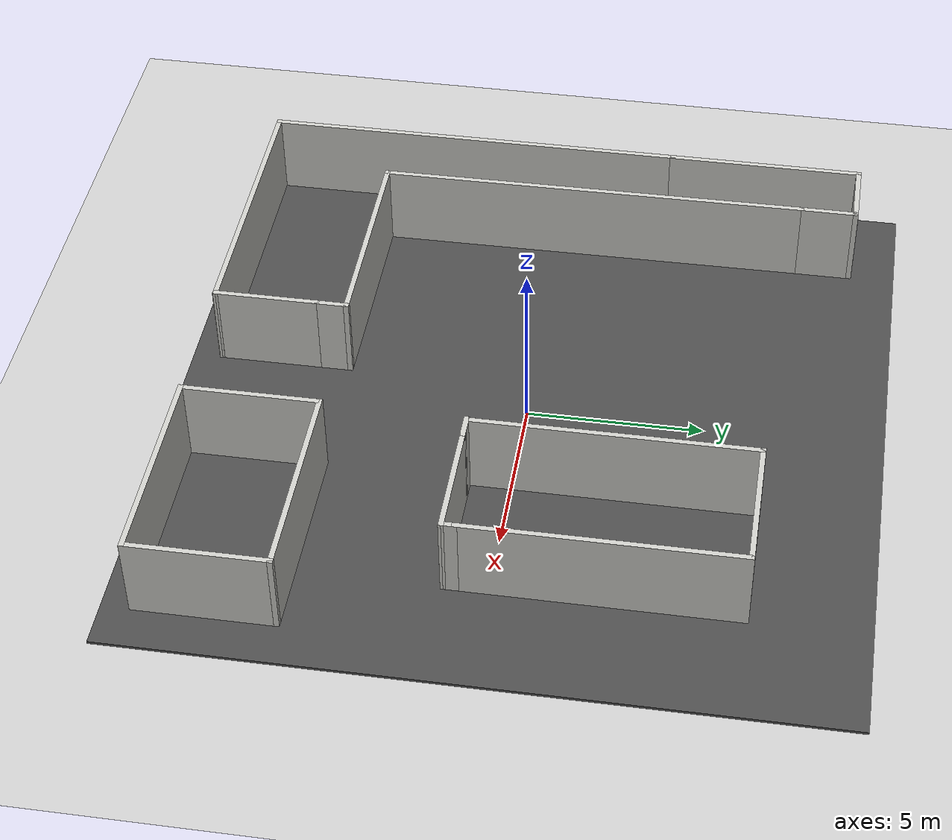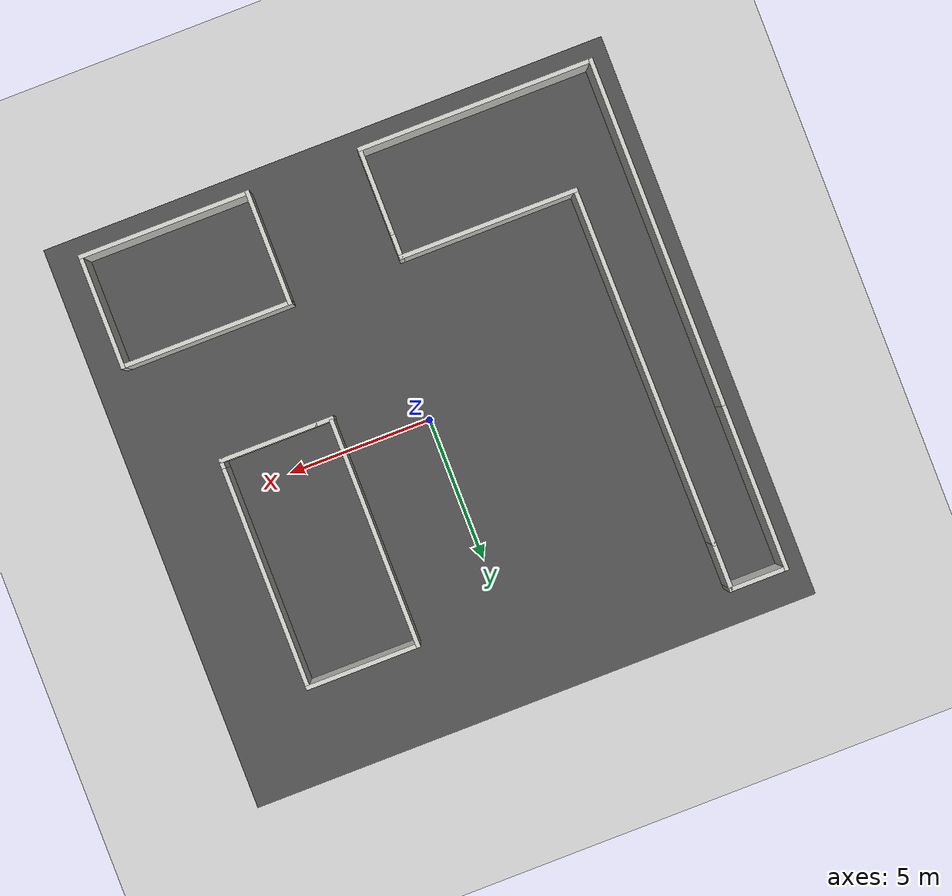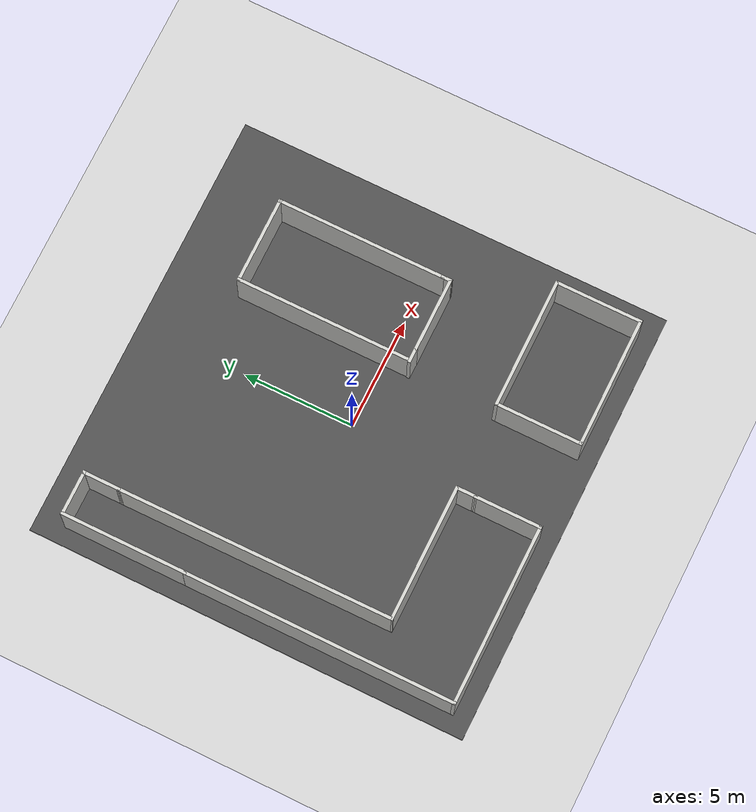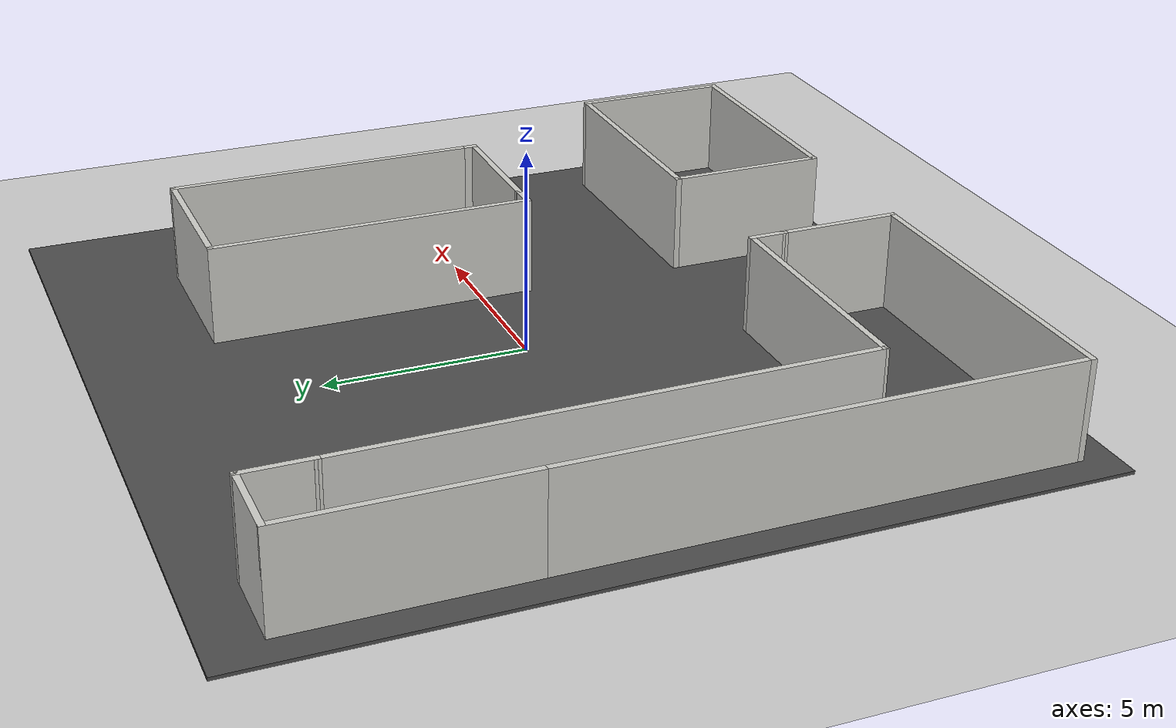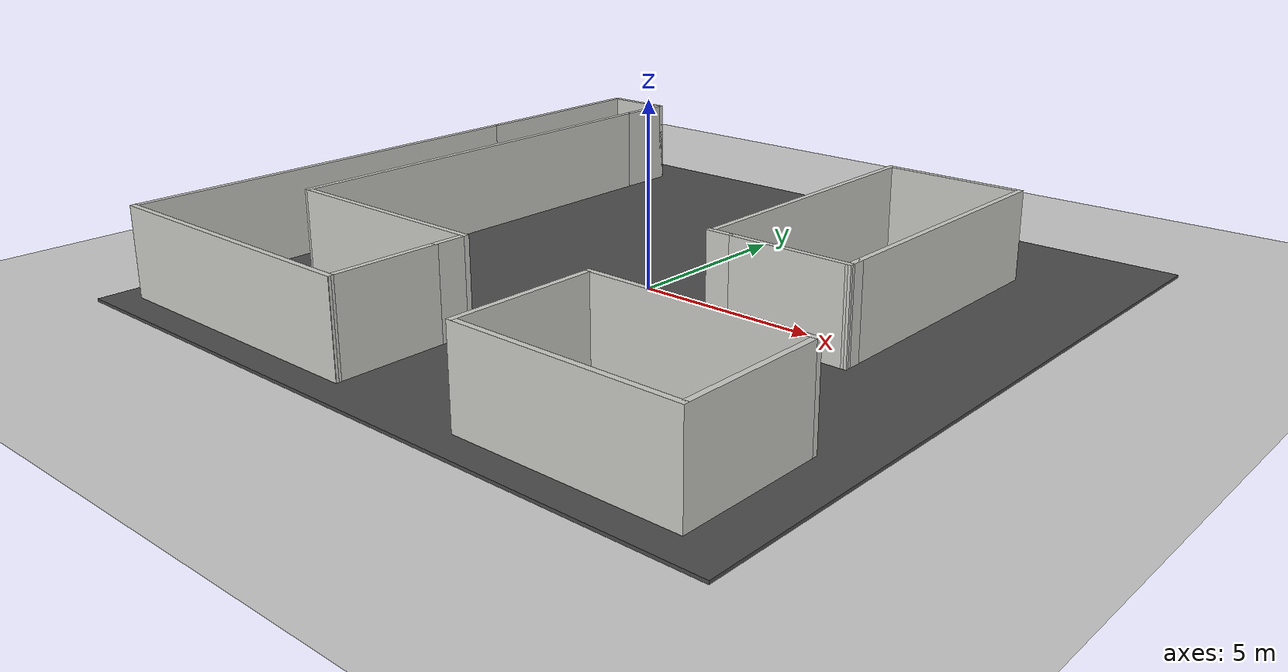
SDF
<sdf version="1.7">
 <world name="default">
  <light name="sun" type="directional">
   <pose>0 0 10 0 -0 0</pose>
   <diffuse>0.8 0.8 0.8 1</diffuse>
   <specular>0.2 0.2 0.2 1</specular>
   <attenuation>
    <range>1000</range>
    <constant>0.9</constant>
    <linear>0.01</linear>
    <quadratic>0.001</quadratic>
   </attenuation>
   <direction>-0.5 0.1 -0.9</direction>
   <spot><inner_angle>0</inner_angle><outer_angle>0</outer_angle><falloff>0</falloff></spot>
  </light>
  <model name="ground_plane">
   <static>1</static>
   <link name="link">
    <collision name="collision">
     <geometry><plane><normal>0 0 1</normal><size>100 100</size></plane></geometry>
     <surface>
      <contact><collide_bitmask>65535</collide_bitmask></contact>
      <friction><ode><mu>100</mu><mu2>50</mu2></ode></friction>
     </surface>
    </collision>
    <visual name="visual">
     <cast_shadows>0</cast_shadows>
     <geometry><plane><normal>0 0 1</normal><size>100 100</size></plane></geometry>
     <material>
      <script><uri>file://media/materials/scripts/gazebo.material</uri><name>Gazebo/Grey</name></script>
     </material>
    </visual>
   </link>
  </model>
  <gravity>0 0 -9.8</gravity>
  <magnetic_field>6e-06 2.3e-05 -4.2e-05</magnetic_field>
  <atmosphere type="adiabatic"/>
  <physics type="ode">
   <max_step_size>0.001</max_step_size>
   <real_time_factor>1</real_time_factor>
   <real_time_update_rate>1000</real_time_update_rate>
  </physics>
  <scene><ambient>0.4 0.4 0.4 1</ambient><background>0.7 0.7 0.7 1</background><shadows>1</shadows></scene>
  <spherical_coordinates>
   <surface_model>EARTH_WGS84</surface_model>
   <latitude_deg>0</latitude_deg>
   <longitude_deg>0</longitude_deg>
   <elevation>0</elevation>
   <heading_deg>0</heading_deg>
  </spherical_coordinates>
  <model name="Map_simu_leo">
   <pose>-0.195063 -0.182903 0 0 -0 0</pose>
   <link name="Wall_10">
    <collision name="Wall_10_Collision">
     <geometry><box><size>1 0.15 2.5</size></box></geometry>
     <pose>0 0 1.25 0 -0 0</pose>
    </collision>
    <visual name="Wall_10_Visual">
     <pose>0 0 1.25 0 -0 0</pose>
     <geometry><box><size>1 0.15 2.5</size></box></geometry>
     <material>
      <script><uri>file://media/materials/scripts/gazebo.material</uri><name>Gazebo/CeilingTiled</name></script>
      <ambient>1 1 1 1</ambient>
     </material>
     <meta><layer>0</layer></meta>
    </visual>
    <pose>-0.844024 -5.54588 0 0 -0 1.5708</pose>
   </link>
   <link name="Wall_12">
    <collision name="Wall_12_Collision">
     <geometry><box><size>6.25 0.15 2.5</size></box></geometry>
     <pose>0 0 1.25 0 -0 0</pose>
    </collision>
    <visual name="Wall_12_Visual">
     <pose>0 0 1.25 0 -0 0</pose>
     <geometry><box><size>6.25 0.15 2.5</size></box></geometry>
     <material>
      <script><uri>file://media/materials/scripts/gazebo.material</uri><name>Gazebo/CeilingTiled</name></script>
      <ambient>1 1 1 1</ambient>
     </material>
     <meta><layer>0</layer></meta>
    </visual>
    <pose>-3.89402 -5.12088 0 0 -0 3.14159</pose>
   </link>
   <link name="Wall_14">
    <collision name="Wall_14_Collision">
     <geometry><box><size>12.5715 0.15 2.5</size></box></geometry>
     <pose>0 0 1.25 0 -0 0</pose>
    </collision>
    <visual name="Wall_14_Visual">
     <pose>0 0 1.25 0 -0 0</pose>
     <geometry><box><size>12.5715 0.15 2.5</size></box></geometry>
     <material>
      <script><uri>file://media/materials/scripts/gazebo.material</uri><name>Gazebo/CeilingTiled</name></script>
      <ambient>1 1 1 1</ambient>
     </material>
     <meta><layer>0</layer></meta>
    </visual>
    <pose>-6.98199 1.08976 0 0 -0 1.57691</pose>
   </link>
   <link name="Wall_19">
    <collision name="Wall_19_Collision">
     <geometry><box><size>2 0.15 2.5</size></box></geometry>
     <pose>0 0 1.25 0 -0 0</pose>
    </collision>
    <visual name="Wall_19_Visual">
     <pose>0 0 1.25 0 -0 0</pose>
     <geometry><box><size>2 0.15 2.5</size></box></geometry>
     <material>
      <script><uri>file://media/materials/scripts/gazebo.material</uri><name>Gazebo/CeilingTiled</name></script>
      <ambient>1 1 1 1</ambient>
     </material>
     <meta><layer>0</layer></meta>
    </visual>
    <pose>-8.01902 8.89912 0 0 -0 0</pose>
   </link>
   <link name="Wall_21">
    <collision name="Wall_21_Collision">
     <geometry><box><size>1.75 0.15 2.5</size></box></geometry>
     <pose>0 0 1.25 0 -0 0</pose>
    </collision>
    <visual name="Wall_21_Visual">
     <pose>0 0 1.25 0 -0 0</pose>
     <geometry><box><size>1.75 0.15 2.5</size></box></geometry>
     <material>
      <script><uri>file://media/materials/scripts/gazebo.material</uri><name>Gazebo/CeilingTiled</name></script>
      <ambient>1 1 1 1</ambient>
     </material>
     <meta><layer>0</layer></meta>
    </visual>
    <pose>-7.01996 8.10367 0 0 -0 1.5708</pose>
   </link>
   <link name="Wall_23">
    <collision name="Wall_23_Collision">
     <geometry><box><size>0.15 0.15 2.5</size></box></geometry>
     <pose>0 0 1.25 0 -0 0</pose>
    </collision>
    <visual name="Wall_23_Visual">
     <pose>0 0 1.25 0 -0 0</pose>
     <geometry><box><size>0.15 0.15 2.5</size></box></geometry>
     <material>
      <script><uri>file://media/materials/scripts/gazebo.material</uri><name>Gazebo/CeilingTiled</name></script>
      <ambient>1 1 1 1</ambient>
     </material>
     <meta><layer>0</layer></meta>
    </visual>
    <pose>-7.01996 8.9004 0 0 -0 0</pose>
   </link>
   <link name="Wall_3">
    <collision name="Wall_3_Collision">
     <geometry><box><size>5.77 0.15 2.5</size></box></geometry>
     <pose>0 0 1.25 0 -0 0</pose>
    </collision>
    <visual name="Wall_3_Visual">
     <pose>0 0 1.25 0 -0 0</pose>
     <geometry><box><size>5.77 0.15 2.5</size></box></geometry>
     <material>
      <script><uri>file://media/materials/scripts/gazebo.material</uri><name>Gazebo/CeilingTiled</name></script>
      <ambient>1 1 1 1</ambient>
     </material>
     <meta><layer>0</layer></meta>
    </visual>
    <pose>-8.94402 6.08912 0 0 -0 1.5708</pose>
   </link>
   <link name="Wall_30">
    <collision name="Wall_30_Collision">
     <geometry><box><size>4 0.15 2.5</size></box></geometry>
     <pose>0 0 1.25 0 -0 0</pose>
    </collision>
    <visual name="Wall_30_Visual">
     <pose>0 0 1.25 0 -0 0</pose>
     <geometry><box><size>4 0.15 2.5</size></box></geometry>
     <material>
      <script><uri>file://media/materials/scripts/gazebo.material</uri><name>Gazebo/CeilingTiled</name></script>
      <ambient>1 1 1 1</ambient>
     </material>
     <meta><layer>0</layer></meta>
    </visual>
    <pose>3.09404 -6.96439 0 0 -0 -1.5708</pose>
   </link>
   <link name="Wall_33">
    <collision name="Wall_33_Collision">
     <geometry><box><size>6 0.15 2.5</size></box></geometry>
     <pose>0 0 1.25 0 -0 0</pose>
    </collision>
    <visual name="Wall_33_Visual">
     <pose>0 0 1.25 0 -0 0</pose>
     <geometry><box><size>6 0.15 2.5</size></box></geometry>
     <material>
      <script><uri>file://media/materials/scripts/gazebo.material</uri><name>Gazebo/CeilingTiled</name></script>
      <ambient>1 1 1 1</ambient>
     </material>
     <meta><layer>0</layer></meta>
    </visual>
    <pose>6.01904 -8.8894 0 0 -0 0</pose>
   </link>
   <link name="Wall_34">
    <collision name="Wall_34_Collision">
     <geometry><box><size>4 0.15 2.5</size></box></geometry>
     <pose>0 0 1.25 0 -0 0</pose>
    </collision>
    <visual name="Wall_34_Visual">
     <pose>0 0 1.25 0 -0 0</pose>
     <geometry><box><size>4 0.15 2.5</size></box></geometry>
     <material>
      <script><uri>file://media/materials/scripts/gazebo.material</uri><name>Gazebo/CeilingTiled</name></script>
      <ambient>1 1 1 1</ambient>
     </material>
     <meta><layer>0</layer></meta>
    </visual>
    <pose>8.94404 -6.96439 0 0 -0 1.5708</pose>
   </link>
   <link name="Wall_35">
    <collision name="Wall_35_Collision">
     <geometry><box><size>6 0.15 2.5</size></box></geometry>
     <pose>0 0 1.25 0 -0 0</pose>
    </collision>
    <visual name="Wall_35_Visual">
     <pose>0 0 1.25 0 -0 0</pose>
     <geometry><box><size>6 0.15 2.5</size></box></geometry>
     <material>
      <script><uri>file://media/materials/scripts/gazebo.material</uri><name>Gazebo/CeilingTiled</name></script>
      <ambient>1 1 1 1</ambient>
     </material>
     <meta><layer>0</layer></meta>
    </visual>
    <pose>6.01904 -5.03939 0 0 -0 3.14159</pose>
   </link>
   <link name="Wall_43">
    <collision name="Wall_43_Collision">
     <geometry><box><size>8 0.15 2.5</size></box></geometry>
     <pose>0 0 1.25 0 -0 0</pose>
    </collision>
    <visual name="Wall_43_Visual">
     <pose>0 0 1.25 0 -0 0</pose>
     <geometry><box><size>8 0.15 2.5</size></box></geometry>
     <material>
      <script><uri>file://media/materials/scripts/gazebo.material</uri><name>Gazebo/CeilingTiled</name></script>
      <ambient>1 1 1 1</ambient>
     </material>
     <meta><layer>0</layer></meta>
    </visual>
    <pose>3.20368 3.01053 0 0 -0 1.5708</pose>
   </link>
   <link name="Wall_45">
    <collision name="Wall_45_Collision">
     <geometry><box><size>4 0.15 2.5</size></box></geometry>
     <pose>0 0 1.25 0 -0 0</pose>
    </collision>
    <visual name="Wall_45_Visual">
     <pose>0 0 1.25 0 -0 0</pose>
     <geometry><box><size>4 0.15 2.5</size></box></geometry>
     <material>
      <script><uri>file://media/materials/scripts/gazebo.material</uri><name>Gazebo/CeilingTiled</name></script>
      <ambient>1 1 1 1</ambient>
     </material>
     <meta><layer>0</layer></meta>
    </visual>
    <pose>5.12868 6.93553 0 0 -0 0</pose>
   </link>
   <link name="Wall_46">
    <collision name="Wall_46_Collision">
     <geometry><box><size>7.75 0.15 2.5</size></box></geometry>
     <pose>0 0 1.25 0 -0 0</pose>
    </collision>
    <visual name="Wall_46_Visual">
     <pose>0 0 1.25 0 -0 0</pose>
     <geometry><box><size>7.75 0.15 2.5</size></box></geometry>
     <material>
      <script><uri>file://media/materials/scripts/gazebo.material</uri><name>Gazebo/CeilingTiled</name></script>
      <ambient>1 1 1 1</ambient>
     </material>
     <meta><layer>0</layer></meta>
    </visual>
    <pose>7.05368 3.13553 0 0 -0 -1.5708</pose>
   </link>
   <link name="Wall_49">
    <collision name="Wall_49_Collision">
     <geometry><box><size>0.5 0.15 2.5</size></box></geometry>
     <pose>0 0 1.25 0 -0 0</pose>
    </collision>
    <visual name="Wall_49_Visual">
     <pose>0 0 1.25 0 -0 0</pose>
     <geometry><box><size>0.5 0.15 2.5</size></box></geometry>
     <material>
      <script><uri>file://media/materials/scripts/gazebo.material</uri><name>Gazebo/CeilingTiled</name></script>
      <ambient>1 1 1 1</ambient>
     </material>
     <meta><layer>0</layer></meta>
    </visual>
    <pose>7.05368 -0.83947 0 0 -0 -1.5708</pose>
   </link>
   <link name="Wall_5">
    <collision name="Wall_5_Collision">
     <geometry><box><size>12.3228 0.15 2.5</size></box></geometry>
     <pose>0 0 1.25 0 -0 0</pose>
    </collision>
    <visual name="Wall_5_Visual">
     <pose>0 0 1.25 0 -0 0</pose>
     <geometry><box><size>12.3228 0.15 2.5</size></box></geometry>
     <material>
      <script><uri>file://media/materials/scripts/gazebo.material</uri><name>Gazebo/CeilingTiled</name></script>
      <ambient>1 1 1 1</ambient>
     </material>
     <meta><layer>0</layer></meta>
    </visual>
    <pose>-8.94242 -2.80728 0 0 -0 -1.57053</pose>
   </link>
   <link name="Wall_51">
    <collision name="Wall_51_Collision">
     <geometry><box><size>3.43084 0.15 2.5</size></box></geometry>
     <pose>0 0 1.25 0 -0 0</pose>
    </collision>
    <visual name="Wall_51_Visual">
     <pose>0 0 1.25 0 -0 0</pose>
     <geometry><box><size>3.43084 0.15 2.5</size></box></geometry>
     <material>
      <script><uri>file://media/materials/scripts/gazebo.material</uri><name>Gazebo/CeilingTiled</name></script>
      <ambient>1 1 1 1</ambient>
     </material>
     <meta><layer>0</layer></meta>
    </visual>
    <pose>5.41326 -1.01139 0 0 -0 3.13971</pose>
   </link>
   <link name="Wall_52">
    <collision name="Wall_52_Collision">
     <geometry><box><size>0.75 0.15 2.5</size></box></geometry>
     <pose>0 0 1.25 0 -0 0</pose>
    </collision>
    <visual name="Wall_52_Visual">
     <pose>0 0 1.25 0 -0 0</pose>
     <geometry><box><size>0.75 0.15 2.5</size></box></geometry>
     <material>
      <script><uri>file://media/materials/scripts/gazebo.material</uri><name>Gazebo/CeilingTiled</name></script>
      <ambient>1 1 1 1</ambient>
     </material>
     <meta><layer>0</layer></meta>
    </visual>
    <pose>3.47285 -1.00831 0 0 -0 3.14159</pose>
   </link>
   <link name="Wall_7">
    <collision name="Wall_7_Collision">
     <geometry><box><size>8.25 0.15 2.5</size></box></geometry>
     <pose>0 0 1.25 0 -0 0</pose>
    </collision>
    <visual name="Wall_7_Visual">
     <pose>0 0 1.25 0 -0 0</pose>
     <geometry><box><size>8.25 0.15 2.5</size></box></geometry>
     <material>
      <script><uri>file://media/materials/scripts/gazebo.material</uri><name>Gazebo/CeilingTiled</name></script>
      <ambient>1 1 1 1</ambient>
     </material>
     <meta><layer>0</layer></meta>
    </visual>
    <pose>-4.89082 -8.90367 0 0 -0 0</pose>
   </link>
   <link name="Wall_8">
    <collision name="Wall_8_Collision">
     <geometry><box><size>3.07279 0.15 2.5</size></box></geometry>
     <pose>0 0 1.25 0 -0 0</pose>
    </collision>
    <visual name="Wall_8_Visual">
     <pose>0 0 1.25 0 -0 0</pose>
     <geometry><box><size>3.07279 0.15 2.5</size></box></geometry>
     <material>
      <script><uri>file://media/materials/scripts/gazebo.material</uri><name>Gazebo/CeilingTiled</name></script>
      <ambient>1 1 1 1</ambient>
     </material>
     <meta><layer>0</layer></meta>
    </visual>
    <pose>-0.842423 -7.43227 0 0 -0 1.57189</pose>
   </link>
   <static>1</static>
  </model>
  <model name="asphalt_plane">
   <static>1</static>
   <link name="link">
    <collision name="collision"><geometry><box><size>20 20 0.1</size></box></geometry></collision>
    <visual name="visual">
     <cast_shadows>0</cast_shadows>
     <geometry><box><size>20 20 0.1</size></box></geometry>
     <material>
      <script>
       <uri>model://asphalt_plane/materials/scripts</uri>
       <uri>model://asphalt_plane/materials/textures</uri>
       <name>vrc/asphalt</name>
      </script>
     </material>
    </visual>
   </link>
   <pose>0.034067 0.067622 0 0 -0 0</pose>
  </model>
 </world>
</sdf>
